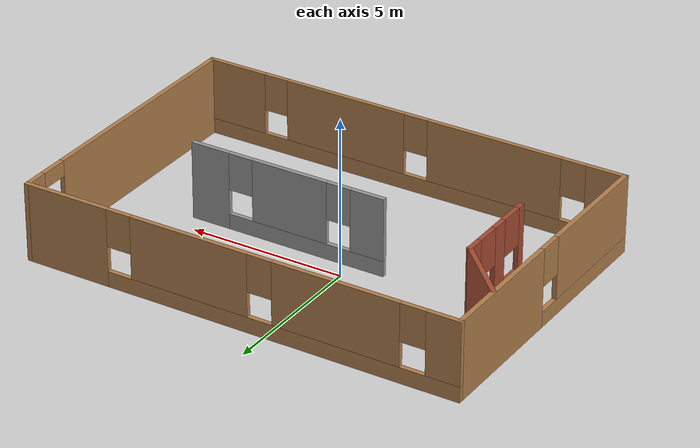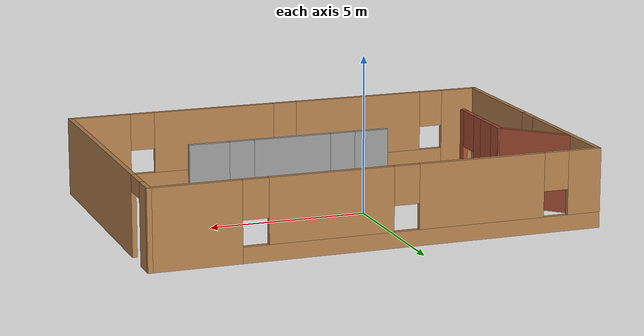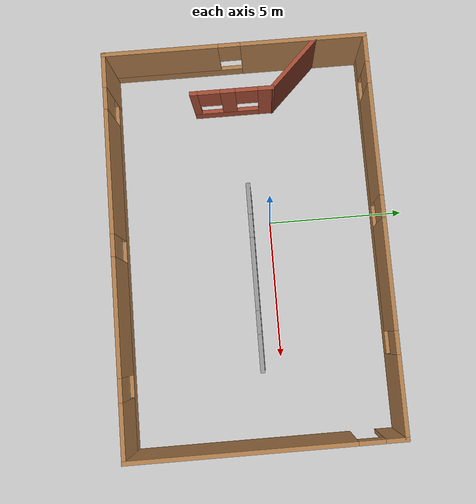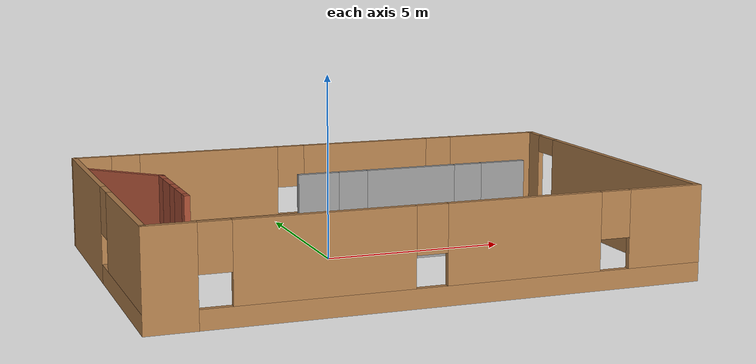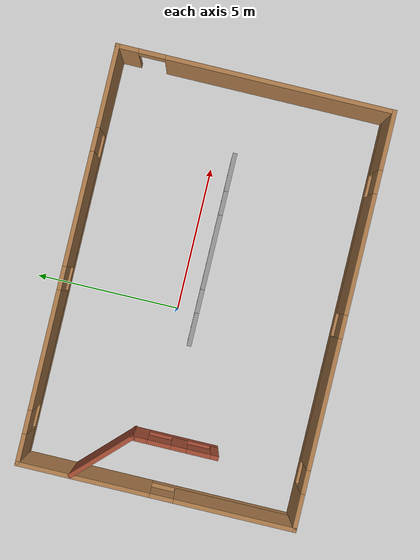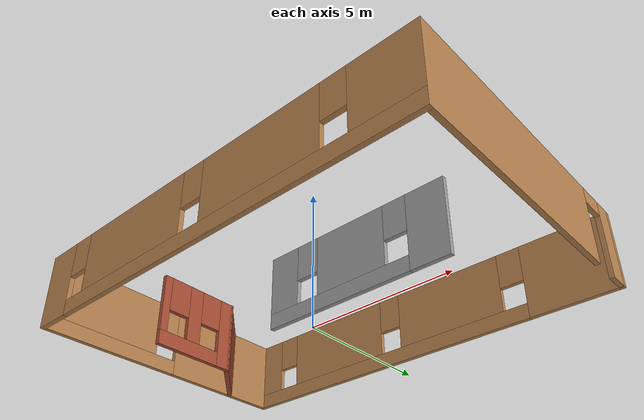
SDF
<?xml version='1.0'?>
<sdf version='1.7'>
  <model name='hotel'>
    <pose>0.929949 -0.775965 0 0 -0 0</pose>
    <link name='Wall_10'>
      <collision name='Wall_10_Collision'>
        <geometry>
          <box>
            <size>2.5 0.15 2.5</size>
          </box>
        </geometry>
        <pose>0 0 1.25 0 -0 0</pose>
      </collision>
      <visual name='Wall_10_Visual'>
        <pose>0 0 1.25 0 -0 0</pose>
        <geometry>
          <box>
            <size>2.5 0.15 2.5</size>
          </box>
        </geometry>
        <material>
          <script>
            <uri>file://media/materials/scripts/gazebo.material</uri>
            <name>Gazebo/Bricks</name>
          </script>
          <ambient>1 1 1 1</ambient>
        </material>
        <meta>
          <layer>0</layer>
        </meta>
      </visual>
      <pose>-6.18511 2.04534 0 0 -0 -0.785398</pose>
    </link>
    <link name='Wall_12'>
      <pose>-5.35426 -0.210514 0 0 -0 -1.5708</pose>
      <visual name='Wall_12_Visual_0'>
        <pose>-1.20933 0 1.25 0 -0 0</pose>
        <geometry>
          <box>
            <size>0.581349 0.15 2.5</size>
          </box>
        </geometry>
        <material>
          <script>
            <uri>file://media/materials/scripts/gazebo.material</uri>
            <name>Gazebo/Bricks</name>
          </script>
          <ambient>1 1 1 1</ambient>
        </material>
        <meta>
          <layer>0</layer>
        </meta>
      </visual>
      <collision name='Wall_12_Collision_0'>
        <geometry>
          <box>
            <size>0.581349 0.15 2.5</size>
          </box>
        </geometry>
        <pose>-1.20933 0 1.25 0 -0 0</pose>
      </collision>
      <visual name='Wall_12_Visual_1'>
        <pose>0.290674 0 0.25 0 -0 0</pose>
        <geometry>
          <box>
            <size>2.41865 0.15 0.5</size>
          </box>
        </geometry>
        <material>
          <script>
            <uri>file://media/materials/scripts/gazebo.material</uri>
            <name>Gazebo/Bricks</name>
          </script>
          <ambient>1 1 1 1</ambient>
        </material>
        <meta>
          <layer>0</layer>
        </meta>
      </visual>
      <collision name='Wall_12_Collision_1'>
        <geometry>
          <box>
            <size>2.41865 0.15 0.5</size>
          </box>
        </geometry>
        <pose>0.290674 0 0.25 0 -0 0</pose>
      </collision>
      <visual name='Wall_12_Visual_2'>
        <pose>0.149745 0 1.5 0 -0 0</pose>
        <geometry>
          <box>
            <size>0.536793 0.15 2</size>
          </box>
        </geometry>
        <material>
          <script>
            <uri>file://media/materials/scripts/gazebo.material</uri>
            <name>Gazebo/Bricks</name>
          </script>
          <ambient>1 1 1 1</ambient>
        </material>
        <meta>
          <layer>0</layer>
        </meta>
      </visual>
      <collision name='Wall_12_Collision_2'>
        <geometry>
          <box>
            <size>0.536793 0.15 2</size>
          </box>
        </geometry>
        <pose>0.149745 0 1.5 0 -0 0</pose>
      </collision>
      <visual name='Wall_12_Visual_3'>
        <pose>1.35907 0 1.5 0 -0 0</pose>
        <geometry>
          <box>
            <size>0.281858 0.15 2</size>
          </box>
        </geometry>
        <material>
          <script>
            <uri>file://media/materials/scripts/gazebo.material</uri>
            <name>Gazebo/Bricks</name>
          </script>
          <ambient>1 1 1 1</ambient>
        </material>
        <meta>
          <layer>0</layer>
        </meta>
      </visual>
      <collision name='Wall_12_Collision_3'>
        <geometry>
          <box>
            <size>0.281858 0.15 2</size>
          </box>
        </geometry>
        <pose>1.35907 0 1.5 0 -0 0</pose>
      </collision>
      <visual name='Wall_12_Visual_4'>
        <pose>-0.518651 0 1.9 0 -0 0</pose>
        <geometry>
          <box>
            <size>0.8 0.15 1.2</size>
          </box>
        </geometry>
        <material>
          <script>
            <uri>file://media/materials/scripts/gazebo.material</uri>
            <name>Gazebo/Bricks</name>
          </script>
          <ambient>1 1 1 1</ambient>
        </material>
        <meta>
          <layer>0</layer>
        </meta>
      </visual>
      <collision name='Wall_12_Collision_4'>
        <geometry>
          <box>
            <size>0.8 0.15 1.2</size>
          </box>
        </geometry>
        <pose>-0.518651 0 1.9 0 -0 0</pose>
      </collision>
      <visual name='Wall_12_Visual_5'>
        <pose>0.818142 0 1.9 0 -0 0</pose>
        <geometry>
          <box>
            <size>0.8 0.15 1.2</size>
          </box>
        </geometry>
        <material>
          <script>
            <uri>file://media/materials/scripts/gazebo.material</uri>
            <name>Gazebo/Bricks</name>
          </script>
          <ambient>1 1 1 1</ambient>
        </material>
        <meta>
          <layer>0</layer>
        </meta>
      </visual>
      <collision name='Wall_12_Collision_5'>
        <geometry>
          <box>
            <size>0.8 0.15 1.2</size>
          </box>
        </geometry>
        <pose>0.818142 0 1.9 0 -0 0</pose>
      </collision>
    </link>
    <link name='Wall_14'>
      <pose>1.26805 0.096965 0 0 -0 3.14159</pose>
      <visual name='Wall_14_Visual_0'>
        <pose>-2.60802 0 1.25 0 -0 0</pose>
        <geometry>
          <box>
            <size>1.28396 0.15 2.5</size>
          </box>
        </geometry>
        <material>
          <script>
            <uri>file://media/materials/scripts/gazebo.material</uri>
            <name>Gazebo/Grey</name>
          </script>
          <ambient>1 1 1 1</ambient>
        </material>
        <meta>
          <layer>0</layer>
        </meta>
      </visual>
      <collision name='Wall_14_Collision_0'>
        <geometry>
          <box>
            <size>1.28396 0.15 2.5</size>
          </box>
        </geometry>
        <pose>-2.60802 0 1.25 0 -0 0</pose>
      </collision>
      <visual name='Wall_14_Visual_1'>
        <pose>0.64198 0 0.25 0 -0 0</pose>
        <geometry>
          <box>
            <size>5.21604 0.15 0.5</size>
          </box>
        </geometry>
        <material>
          <script>
            <uri>file://media/materials/scripts/gazebo.material</uri>
            <name>Gazebo/Grey</name>
          </script>
          <ambient>1 1 1 1</ambient>
        </material>
        <meta>
          <layer>0</layer>
        </meta>
      </visual>
      <collision name='Wall_14_Collision_1'>
        <geometry>
          <box>
            <size>5.21604 0.15 0.5</size>
          </box>
        </geometry>
        <pose>0.64198 0 0.25 0 -0 0</pose>
      </collision>
      <visual name='Wall_14_Visual_2'>
        <pose>0.087362 0 1.5 0 -0 0</pose>
        <geometry>
          <box>
            <size>2.5068 0.15 2</size>
          </box>
        </geometry>
        <material>
          <script>
            <uri>file://media/materials/scripts/gazebo.material</uri>
            <name>Gazebo/Grey</name>
          </script>
          <ambient>1 1 1 1</ambient>
        </material>
        <meta>
          <layer>0</layer>
        </meta>
      </visual>
      <collision name='Wall_14_Collision_2'>
        <geometry>
          <box>
            <size>2.5068 0.15 2</size>
          </box>
        </geometry>
        <pose>0.087362 0 1.5 0 -0 0</pose>
      </collision>
      <visual name='Wall_14_Visual_3'>
        <pose>2.69538 0 1.5 0 -0 0</pose>
        <geometry>
          <box>
            <size>1.10924 0.15 2</size>
          </box>
        </geometry>
        <material>
          <script>
            <uri>file://media/materials/scripts/gazebo.material</uri>
            <name>Gazebo/Grey</name>
          </script>
          <ambient>1 1 1 1</ambient>
        </material>
        <meta>
          <layer>0</layer>
        </meta>
      </visual>
      <collision name='Wall_14_Collision_3'>
        <geometry>
          <box>
            <size>1.10924 0.15 2</size>
          </box>
        </geometry>
        <pose>2.69538 0 1.5 0 -0 0</pose>
      </collision>
      <visual name='Wall_14_Visual_4'>
        <pose>-1.56604 0 1.9 0 -0 0</pose>
        <geometry>
          <box>
            <size>0.8 0.15 1.2</size>
          </box>
        </geometry>
        <material>
          <script>
            <uri>file://media/materials/scripts/gazebo.material</uri>
            <name>Gazebo/Grey</name>
          </script>
          <ambient>1 1 1 1</ambient>
        </material>
        <meta>
          <layer>0</layer>
        </meta>
      </visual>
      <collision name='Wall_14_Collision_4'>
        <geometry>
          <box>
            <size>0.8 0.15 1.2</size>
          </box>
        </geometry>
        <pose>-1.56604 0 1.9 0 -0 0</pose>
      </collision>
      <visual name='Wall_14_Visual_5'>
        <pose>1.74076 0 1.9 0 -0 0</pose>
        <geometry>
          <box>
            <size>0.8 0.15 1.2</size>
          </box>
        </geometry>
        <material>
          <script>
            <uri>file://media/materials/scripts/gazebo.material</uri>
            <name>Gazebo/Grey</name>
          </script>
          <ambient>1 1 1 1</ambient>
        </material>
        <meta>
          <layer>0</layer>
        </meta>
      </visual>
      <collision name='Wall_14_Collision_5'>
        <geometry>
          <box>
            <size>0.8 0.15 1.2</size>
          </box>
        </geometry>
        <pose>1.74076 0 1.9 0 -0 0</pose>
      </collision>
    </link>
    <link name='Wall_2'>
      <pose>-0 -4.675 0 0 -0 0</pose>
      <visual name='Wall_2_Visual_0'>
        <pose>-6.47896 0 1.25 0 -0 0</pose>
        <geometry>
          <box>
            <size>1.29208 0.15 2.5</size>
          </box>
        </geometry>
        <material>
          <script>
            <uri>file://media/materials/scripts/gazebo.material</uri>
            <name>Gazebo/Wood</name>
          </script>
          <ambient>1 1 1 1</ambient>
        </material>
        <meta>
          <layer>0</layer>
        </meta>
      </visual>
      <collision name='Wall_2_Collision_0'>
        <geometry>
          <box>
            <size>1.29208 0.15 2.5</size>
          </box>
        </geometry>
        <pose>-6.47896 0 1.25 0 -0 0</pose>
      </collision>
      <visual name='Wall_2_Visual_1'>
        <pose>0.646041 0 0.25 0 -0 0</pose>
        <geometry>
          <box>
            <size>12.9579 0.15 0.5</size>
          </box>
        </geometry>
        <material>
          <script>
            <uri>file://media/materials/scripts/gazebo.material</uri>
            <name>Gazebo/Wood</name>
          </script>
          <ambient>1 1 1 1</ambient>
        </material>
        <meta>
          <layer>0</layer>
        </meta>
      </visual>
      <collision name='Wall_2_Collision_1'>
        <geometry>
          <box>
            <size>12.9579 0.15 0.5</size>
          </box>
        </geometry>
        <pose>0.646041 0 0.25 0 -0 0</pose>
      </collision>
      <visual name='Wall_2_Visual_2'>
        <pose>-2.8121 0 1.5 0 -0 0</pose>
        <geometry>
          <box>
            <size>4.44164 0.15 2</size>
          </box>
        </geometry>
        <material>
          <script>
            <uri>file://media/materials/scripts/gazebo.material</uri>
            <name>Gazebo/Wood</name>
          </script>
          <ambient>1 1 1 1</ambient>
        </material>
        <meta>
          <layer>0</layer>
        </meta>
      </visual>
      <collision name='Wall_2_Collision_2'>
        <geometry>
          <box>
            <size>4.44164 0.15 2</size>
          </box>
        </geometry>
        <pose>-2.8121 0 1.5 0 -0 0</pose>
      </collision>
      <visual name='Wall_2_Visual_3'>
        <pose>2.25364 0 1.5 0 -0 0</pose>
        <geometry>
          <box>
            <size>4.08985 0.15 2</size>
          </box>
        </geometry>
        <material>
          <script>
            <uri>file://media/materials/scripts/gazebo.material</uri>
            <name>Gazebo/Wood</name>
          </script>
          <ambient>1 1 1 1</ambient>
        </material>
        <meta>
          <layer>0</layer>
        </meta>
      </visual>
      <collision name='Wall_2_Collision_3'>
        <geometry>
          <box>
            <size>4.08985 0.15 2</size>
          </box>
        </geometry>
        <pose>2.25364 0 1.5 0 -0 0</pose>
      </collision>
      <visual name='Wall_2_Visual_4'>
        <pose>6.11178 0 1.5 0 -0 0</pose>
        <geometry>
          <box>
            <size>2.02643 0.15 2</size>
          </box>
        </geometry>
        <material>
          <script>
            <uri>file://media/materials/scripts/gazebo.material</uri>
            <name>Gazebo/Wood</name>
          </script>
          <ambient>1 1 1 1</ambient>
        </material>
        <meta>
          <layer>0</layer>
        </meta>
      </visual>
      <collision name='Wall_2_Collision_4'>
        <geometry>
          <box>
            <size>2.02643 0.15 2</size>
          </box>
        </geometry>
        <pose>6.11178 0 1.5 0 -0 0</pose>
      </collision>
      <visual name='Wall_2_Visual_5'>
        <pose>-5.43292 0 1.9 0 -0 0</pose>
        <geometry>
          <box>
            <size>0.8 0.15 1.2</size>
          </box>
        </geometry>
        <material>
          <script>
            <uri>file://media/materials/scripts/gazebo.material</uri>
            <name>Gazebo/Wood</name>
          </script>
          <ambient>1 1 1 1</ambient>
        </material>
        <meta>
          <layer>0</layer>
        </meta>
      </visual>
      <collision name='Wall_2_Collision_5'>
        <geometry>
          <box>
            <size>0.8 0.15 1.2</size>
          </box>
        </geometry>
        <pose>-5.43292 0 1.9 0 -0 0</pose>
      </collision>
      <visual name='Wall_2_Visual_6'>
        <pose>-0.191282 0 1.9 0 -0 0</pose>
        <geometry>
          <box>
            <size>0.8 0.15 1.2</size>
          </box>
        </geometry>
        <material>
          <script>
            <uri>file://media/materials/scripts/gazebo.material</uri>
            <name>Gazebo/Wood</name>
          </script>
          <ambient>1 1 1 1</ambient>
        </material>
        <meta>
          <layer>0</layer>
        </meta>
      </visual>
      <collision name='Wall_2_Collision_6'>
        <geometry>
          <box>
            <size>0.8 0.15 1.2</size>
          </box>
        </geometry>
        <pose>-0.191282 0 1.9 0 -0 0</pose>
      </collision>
      <visual name='Wall_2_Visual_7'>
        <pose>4.69857 0 1.9 0 -0 0</pose>
        <geometry>
          <box>
            <size>0.8 0.15 1.2</size>
          </box>
        </geometry>
        <material>
          <script>
            <uri>file://media/materials/scripts/gazebo.material</uri>
            <name>Gazebo/Wood</name>
          </script>
          <ambient>1 1 1 1</ambient>
        </material>
        <meta>
          <layer>0</layer>
        </meta>
      </visual>
      <collision name='Wall_2_Collision_7'>
        <geometry>
          <box>
            <size>0.8 0.15 1.2</size>
          </box>
        </geometry>
        <pose>4.69857 0 1.9 0 -0 0</pose>
      </collision>
    </link>
    <link name='Wall_4'>
      <pose>7.05 -0 0 0 -0 1.5708</pose>
      <visual name='Wall_4_Visual_0'>
        <pose>-0.845298 0 1.25 0 -0 0</pose>
        <geometry>
          <box>
            <size>7.8094 0.15 2.5</size>
          </box>
        </geometry>
        <material>
          <script>
            <uri>file://media/materials/scripts/gazebo.material</uri>
            <name>Gazebo/Wood</name>
          </script>
          <ambient>1 1 1 1</ambient>
        </material>
        <meta>
          <layer>0</layer>
        </meta>
      </visual>
      <collision name='Wall_4_Collision_0'>
        <geometry>
          <box>
            <size>7.8094 0.15 2.5</size>
          </box>
        </geometry>
        <pose>-0.845298 0 1.25 0 -0 0</pose>
      </collision>
      <visual name='Wall_4_Visual_1'>
        <pose>4.3547 0 1.25 0 -0 0</pose>
        <geometry>
          <box>
            <size>0.790596 0.15 2.5</size>
          </box>
        </geometry>
        <material>
          <script>
            <uri>file://media/materials/scripts/gazebo.material</uri>
            <name>Gazebo/Wood</name>
          </script>
          <ambient>1 1 1 1</ambient>
        </material>
        <meta>
          <layer>0</layer>
        </meta>
      </visual>
      <collision name='Wall_4_Collision_1'>
        <geometry>
          <box>
            <size>0.790596 0.15 2.5</size>
          </box>
        </geometry>
        <pose>4.3547 0 1.25 0 -0 0</pose>
      </collision>
      <visual name='Wall_4_Visual_2'>
        <pose>3.5094 0 2.25 0 -0 0</pose>
        <geometry>
          <box>
            <size>0.9 0.15 0.5</size>
          </box>
        </geometry>
        <material>
          <script>
            <uri>file://media/materials/scripts/gazebo.material</uri>
            <name>Gazebo/Wood</name>
          </script>
          <ambient>1 1 1 1</ambient>
        </material>
        <meta>
          <layer>0</layer>
        </meta>
      </visual>
      <collision name='Wall_4_Collision_2'>
        <geometry>
          <box>
            <size>0.9 0.15 0.5</size>
          </box>
        </geometry>
        <pose>3.5094 0 2.25 0 -0 0</pose>
      </collision>
    </link>
    <link name='Wall_6'>
      <pose>-0 4.675 0 0 -0 3.14159</pose>
      <visual name='Wall_6_Visual_0'>
        <pose>-5.70723 0 1.25 0 -0 0</pose>
        <geometry>
          <box>
            <size>2.83555 0.15 2.5</size>
          </box>
        </geometry>
        <material>
          <script>
            <uri>file://media/materials/scripts/gazebo.material</uri>
            <name>Gazebo/Wood</name>
          </script>
          <ambient>1 1 1 1</ambient>
        </material>
        <meta>
          <layer>0</layer>
        </meta>
      </visual>
      <collision name='Wall_6_Collision_0'>
        <geometry>
          <box>
            <size>2.83555 0.15 2.5</size>
          </box>
        </geometry>
        <pose>-5.70723 0 1.25 0 -0 0</pose>
      </collision>
      <visual name='Wall_6_Visual_1'>
        <pose>1.41777 0 0.25 0 -0 0</pose>
        <geometry>
          <box>
            <size>11.4145 0.15 0.5</size>
          </box>
        </geometry>
        <material>
          <script>
            <uri>file://media/materials/scripts/gazebo.material</uri>
            <name>Gazebo/Wood</name>
          </script>
          <ambient>1 1 1 1</ambient>
        </material>
        <meta>
          <layer>0</layer>
        </meta>
      </visual>
      <collision name='Wall_6_Collision_1'>
        <geometry>
          <box>
            <size>11.4145 0.15 0.5</size>
          </box>
        </geometry>
        <pose>1.41777 0 0.25 0 -0 0</pose>
      </collision>
      <visual name='Wall_6_Visual_2'>
        <pose>-1.55007 0 1.5 0 -0 0</pose>
        <geometry>
          <box>
            <size>3.87878 0.15 2</size>
          </box>
        </geometry>
        <material>
          <script>
            <uri>file://media/materials/scripts/gazebo.material</uri>
            <name>Gazebo/Wood</name>
          </script>
          <ambient>1 1 1 1</ambient>
        </material>
        <meta>
          <layer>0</layer>
        </meta>
      </visual>
      <collision name='Wall_6_Collision_2'>
        <geometry>
          <box>
            <size>3.87878 0.15 2</size>
          </box>
        </geometry>
        <pose>-1.55007 0 1.5 0 -0 0</pose>
      </collision>
      <visual name='Wall_6_Visual_3'>
        <pose>3.21666 0 1.5 0 -0 0</pose>
        <geometry>
          <box>
            <size>4.05467 0.15 2</size>
          </box>
        </geometry>
        <material>
          <script>
            <uri>file://media/materials/scripts/gazebo.material</uri>
            <name>Gazebo/Wood</name>
          </script>
          <ambient>1 1 1 1</ambient>
        </material>
        <meta>
          <layer>0</layer>
        </meta>
      </visual>
      <collision name='Wall_6_Collision_3'>
        <geometry>
          <box>
            <size>4.05467 0.15 2</size>
          </box>
        </geometry>
        <pose>3.21666 0 1.5 0 -0 0</pose>
      </collision>
      <visual name='Wall_6_Visual_4'>
        <pose>6.5845 0 1.5 0 -0 0</pose>
        <geometry>
          <box>
            <size>1.08101 0.15 2</size>
          </box>
        </geometry>
        <material>
          <script>
            <uri>file://media/materials/scripts/gazebo.material</uri>
            <name>Gazebo/Wood</name>
          </script>
          <ambient>1 1 1 1</ambient>
        </material>
        <meta>
          <layer>0</layer>
        </meta>
      </visual>
      <collision name='Wall_6_Collision_4'>
        <geometry>
          <box>
            <size>1.08101 0.15 2</size>
          </box>
        </geometry>
        <pose>6.5845 0 1.5 0 -0 0</pose>
      </collision>
      <visual name='Wall_6_Visual_5'>
        <pose>-3.88945 0 1.9 0 -0 0</pose>
        <geometry>
          <box>
            <size>0.8 0.15 1.2</size>
          </box>
        </geometry>
        <material>
          <script>
            <uri>file://media/materials/scripts/gazebo.material</uri>
            <name>Gazebo/Wood</name>
          </script>
          <ambient>1 1 1 1</ambient>
        </material>
        <meta>
          <layer>0</layer>
        </meta>
      </visual>
      <collision name='Wall_6_Collision_5'>
        <geometry>
          <box>
            <size>0.8 0.15 1.2</size>
          </box>
        </geometry>
        <pose>-3.88945 0 1.9 0 -0 0</pose>
      </collision>
      <visual name='Wall_6_Visual_6'>
        <pose>0.789321 0 1.9 0 -0 0</pose>
        <geometry>
          <box>
            <size>0.8 0.15 1.2</size>
          </box>
        </geometry>
        <material>
          <script>
            <uri>file://media/materials/scripts/gazebo.material</uri>
            <name>Gazebo/Wood</name>
          </script>
          <ambient>1 1 1 1</ambient>
        </material>
        <meta>
          <layer>0</layer>
        </meta>
      </visual>
      <collision name='Wall_6_Collision_6'>
        <geometry>
          <box>
            <size>0.8 0.15 1.2</size>
          </box>
        </geometry>
        <pose>0.789321 0 1.9 0 -0 0</pose>
      </collision>
      <visual name='Wall_6_Visual_7'>
        <pose>5.64399 0 1.9 0 -0 0</pose>
        <geometry>
          <box>
            <size>0.8 0.15 1.2</size>
          </box>
        </geometry>
        <material>
          <script>
            <uri>file://media/materials/scripts/gazebo.material</uri>
            <name>Gazebo/Wood</name>
          </script>
          <ambient>1 1 1 1</ambient>
        </material>
        <meta>
          <layer>0</layer>
        </meta>
      </visual>
      <collision name='Wall_6_Collision_7'>
        <geometry>
          <box>
            <size>0.8 0.15 1.2</size>
          </box>
        </geometry>
        <pose>5.64399 0 1.9 0 -0 0</pose>
      </collision>
    </link>
    <link name='Wall_7'>
      <pose>-7.05 -0 0 0 -0 -1.5708</pose>
      <visual name='Wall_7_Visual_0'>
        <pose>-2.48282 0 1.25 0 -0 0</pose>
        <geometry>
          <box>
            <size>4.53437 0.15 2.5</size>
          </box>
        </geometry>
        <material>
          <script>
            <uri>file://media/materials/scripts/gazebo.material</uri>
            <name>Gazebo/Wood</name>
          </script>
          <ambient>1 1 1 1</ambient>
        </material>
        <meta>
          <layer>0</layer>
        </meta>
      </visual>
      <collision name='Wall_7_Collision_0'>
        <geometry>
          <box>
            <size>4.53437 0.15 2.5</size>
          </box>
        </geometry>
        <pose>-2.48282 0 1.25 0 -0 0</pose>
      </collision>
      <visual name='Wall_7_Visual_1'>
        <pose>2.26718 0 0.25 0 -0 0</pose>
        <geometry>
          <box>
            <size>4.96563 0.15 0.5</size>
          </box>
        </geometry>
        <material>
          <script>
            <uri>file://media/materials/scripts/gazebo.material</uri>
            <name>Gazebo/Wood</name>
          </script>
          <ambient>1 1 1 1</ambient>
        </material>
        <meta>
          <layer>0</layer>
        </meta>
      </visual>
      <collision name='Wall_7_Collision_1'>
        <geometry>
          <box>
            <size>4.96563 0.15 0.5</size>
          </box>
        </geometry>
        <pose>2.26718 0 0.25 0 -0 0</pose>
      </collision>
      <visual name='Wall_7_Visual_2'>
        <pose>2.66718 0 1.5 0 -0 0</pose>
        <geometry>
          <box>
            <size>4.16563 0.15 2</size>
          </box>
        </geometry>
        <material>
          <script>
            <uri>file://media/materials/scripts/gazebo.material</uri>
            <name>Gazebo/Wood</name>
          </script>
          <ambient>1 1 1 1</ambient>
        </material>
        <meta>
          <layer>0</layer>
        </meta>
      </visual>
      <collision name='Wall_7_Collision_2'>
        <geometry>
          <box>
            <size>4.16563 0.15 2</size>
          </box>
        </geometry>
        <pose>2.66718 0 1.5 0 -0 0</pose>
      </collision>
      <visual name='Wall_7_Visual_3'>
        <pose>0.184366 0 1.9 0 -0 0</pose>
        <geometry>
          <box>
            <size>0.8 0.15 1.2</size>
          </box>
        </geometry>
        <material>
          <script>
            <uri>file://media/materials/scripts/gazebo.material</uri>
            <name>Gazebo/Wood</name>
          </script>
          <ambient>1 1 1 1</ambient>
        </material>
        <meta>
          <layer>0</layer>
        </meta>
      </visual>
      <collision name='Wall_7_Collision_3'>
        <geometry>
          <box>
            <size>0.8 0.15 1.2</size>
          </box>
        </geometry>
        <pose>0.184366 0 1.9 0 -0 0</pose>
      </collision>
    </link>
    <static>1</static>
  </model>
</sdf>
